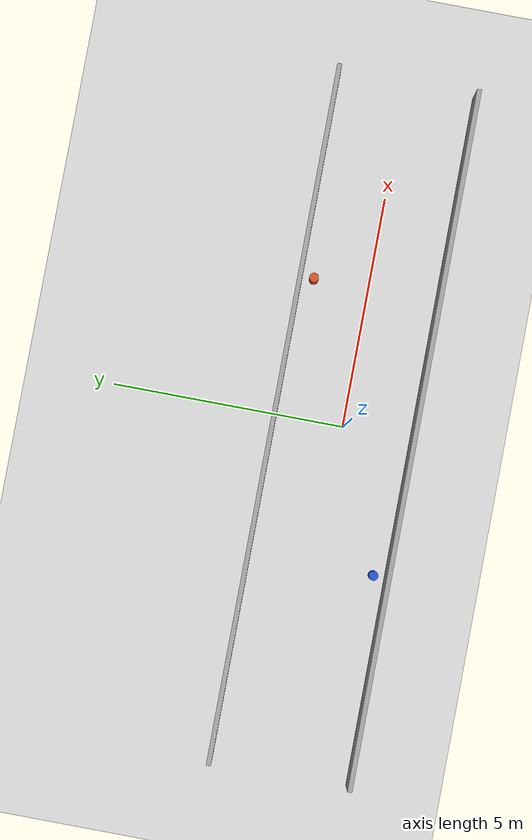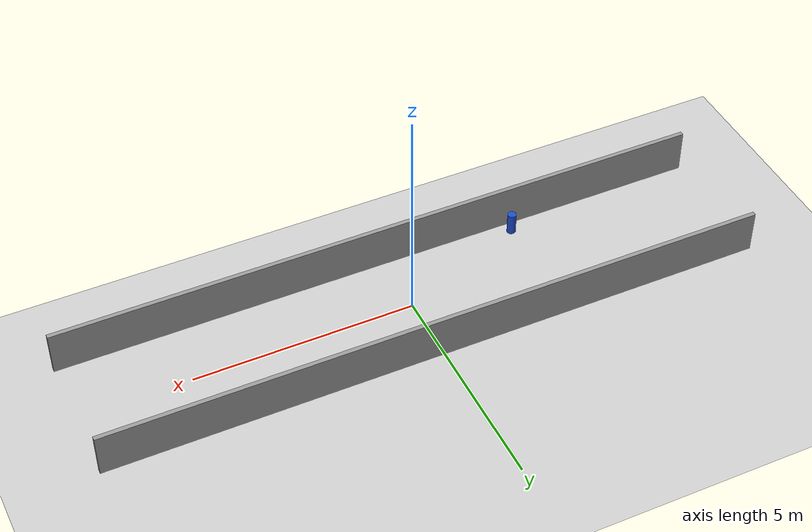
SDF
<?xml version="1.0" ?>
<sdf version="1.6">
  <world name="straight_test">
    <physics name="1ms" type="ignored">
      <max_step_size>0.001</max_step_size>
      <real_time_factor>1.0</real_time_factor>
    </physics>
    <plugin filename="gz-sim-physics-system" name="gz::sim::systems::Physics"></plugin>
    <plugin filename="gz-sim-user-commands-system" name="gz::sim::systems::UserCommands"></plugin>
    <plugin filename="gz-sim-scene-broadcaster-system" name="gz::sim::systems::SceneBroadcaster"></plugin>
    <plugin filename="gz-sim-contact-system" name="gz::sim::systems::Contact"></plugin>
    <plugin filename="gz-sim-sensors-system" name="gz::sim::systems::Sensors">
      <render_engine>ogre2</render_engine>
    </plugin>
    <plugin filename="gz-sim-imu-system" name="gz::sim::systems::Imu"></plugin>

    <light type="directional" name="sun">
      <cast_shadows>true</cast_shadows>
      <pose>0 0 10 0 0 0</pose>
      <diffuse>0.8 0.8 0.8 1</diffuse>
      <specular>0.2 0.2 0.2 1</specular>
      <attenuation>
        <range>1000</range><constant>0.9</constant><linear>0.01</linear><quadratic>0.001</quadratic>
      </attenuation>
      <direction>-0.5 0.1 -0.9</direction>
    </light>

    <model name="ground_plane">
      <static>true</static>
      <link name="link">
        <collision name="collision"><geometry><plane><normal>0 0 1</normal><size>100 100</size></plane></geometry></collision>
        <visual name="visual"><geometry><plane><normal>0 0 1</normal><size>100 100</size></plane></geometry>
          <material><ambient>0.8 0.8 0.8 1</ambient><diffuse>0.8 0.8 0.8 1</diffuse></material>
        </visual>
      </link>
    </model>

    <!-- Two long parallel walls forming a straight corridor, no turning needed -->
    <model name="corridor_wall_left">
      <static>true</static>
      <pose>0 1.5 0.5 0 0 0</pose>
      <link name="link">
        <collision name="collision"><geometry><box><size>15 0.1 1</size></box></geometry></collision>
        <visual name="visual"><geometry><box><size>15 0.1 1</size></box></geometry>
          <material><ambient>0.6 0.6 0.6 1</ambient><diffuse>0.6 0.6 0.6 1</diffuse></material>
        </visual>
      </link>
    </model>

    <model name="corridor_wall_right">
      <static>true</static>
      <pose>0 -1.5 0.5 0 0 0</pose>
      <link name="link">
        <collision name="collision"><geometry><box><size>15 0.1 1</size></box></geometry></collision>
        <visual name="visual"><geometry><box><size>15 0.1 1</size></box></geometry>
          <material><ambient>0.6 0.6 0.6 1</ambient><diffuse>0.6 0.6 0.6 1</diffuse></material>
        </visual>
      </link>
    </model>

    <!-- A few small pillars along the sides for richer scan features, well clear of a straight path -->
    <model name="pillar_1">
      <static>true</static>
      <pose>3 1.2 0.25 0 0 0</pose>
      <link name="link">
        <collision name="collision"><geometry><cylinder><radius>0.1</radius><length>0.5</length></cylinder></geometry></collision>
        <visual name="visual"><geometry><cylinder><radius>0.1</radius><length>0.5</length></cylinder></geometry>
          <material><ambient>0.8 0.3 0.1 1</ambient><diffuse>0.8 0.3 0.1 1</diffuse></material>
        </visual>
      </link>
    </model>

    <model name="pillar_2">
      <static>true</static>
      <pose>-3 -1.2 0.25 0 0 0</pose>
      <link name="link">
        <collision name="collision"><geometry><cylinder><radius>0.1</radius><length>0.5</length></cylinder></geometry></collision>
        <visual name="visual"><geometry><cylinder><radius>0.1</radius><length>0.5</length></cylinder></geometry>
          <material><ambient>0.1 0.3 0.8 1</ambient><diffuse>0.1 0.3 0.8 1</diffuse></material>
        </visual>
      </link>
    </model>

  </world>
</sdf>
